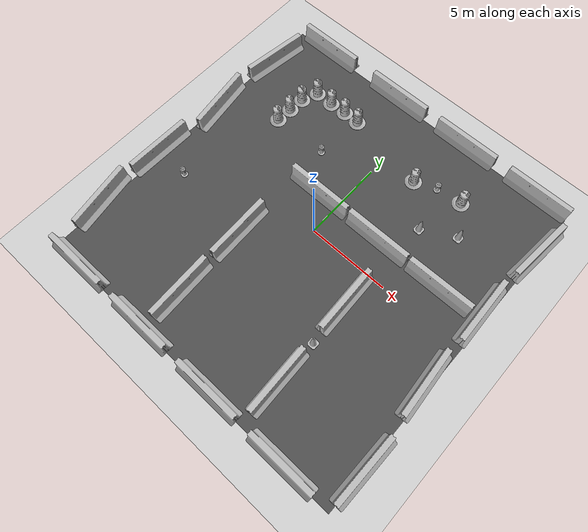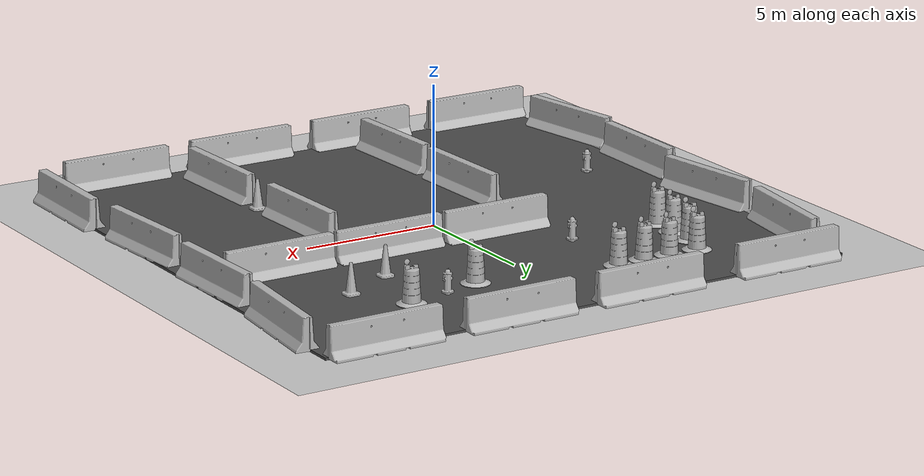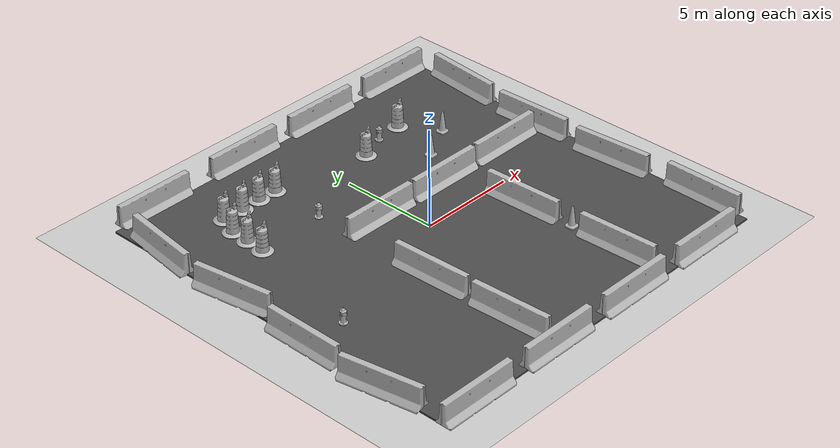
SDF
<sdf version="1.7">
 <world name="default">
  <light name="sun" type="directional">
   <pose>0 0 10 0 -0 0</pose>
   <diffuse>0.8 0.8 0.8 1</diffuse>
   <specular>0.2 0.2 0.2 1</specular>
   <attenuation>
    <range>1000</range>
    <constant>0.9</constant>
    <linear>0.01</linear>
    <quadratic>0.001</quadratic>
   </attenuation>
   <direction>-0.5 0.1 -0.9</direction>
   <spot><inner_angle>0</inner_angle><outer_angle>0</outer_angle><falloff>0</falloff></spot>
  </light>
  <model name="ground_plane">
   <static>1</static>
   <link name="link">
    <collision name="collision">
     <geometry><plane><normal>0 0 1</normal><size>100 100</size></plane></geometry>
     <surface><friction><ode><mu>100</mu><mu2>50</mu2></ode></friction></surface>
    </collision>
    <visual name="visual">
     <cast_shadows>0</cast_shadows>
     <geometry><plane><normal>0 0 1</normal><size>100 100</size></plane></geometry>
     <material>
      <script><uri>file://media/materials/scripts/gazebo.material</uri><name>Gazebo/Grey</name></script>
     </material>
    </visual>
    <velocity_decay><linear>0</linear><angular>0</angular></velocity_decay>
   </link>
  </model>
  <physics type="ode">
   <max_step_size>0.001</max_step_size>
   <real_time_factor>1</real_time_factor>
   <real_time_update_rate>1000</real_time_update_rate>
  </physics>
  <scene><ambient>0.4 0.4 0.4 1</ambient><background>0.7 0.7 0.7 1</background><shadows>1</shadows></scene>
  <model name="jersey_barrier">
   <static>1</static>
   <link name="link">
    <visual name="visual">
     <geometry><mesh><uri>model://jersey_barrier/meshes/jersey_barrier.dae</uri></mesh></geometry>
    </visual>
    <collision name="upright">
     <pose>0 0 0.5715 0 -0 0</pose>
     <geometry><box><size>4.06542 0.3063 1.143</size></box></geometry>
    </collision>
    <collision name="base">
     <pose>0 0 0.032258 0 -0 0</pose>
     <geometry><box><size>4.06542 0.8107 0.064516</size></box></geometry>
    </collision>
    <collision name="base2">
     <pose>0 0 0.1 0 -0 0</pose>
     <geometry><box><size>4.06542 0.65 0.1</size></box></geometry>
    </collision>
    <collision name="base3">
     <pose>0 0 0.2 0 -0 0</pose>
     <geometry><box><size>4.06542 0.5 0.1</size></box></geometry>
    </collision>
    <collision name="left-angle">
     <pose>0 -0.224 0.2401 0.9 -0 0</pose>
     <geometry><box><size>4.06542 0.5 0.064516</size></box></geometry>
    </collision>
    <collision name="right-angle">
     <pose>0 0.224 0.2401 -0.9 0 0</pose>
     <geometry><box><size>4.06542 0.5 0.064516</size></box></geometry>
    </collision>
    <velocity_decay><linear>0</linear><angular>0</angular></velocity_decay>
   </link>
   <pose>-8 -10 0 0 -0 0</pose>
  </model>
  <model name="jersey_barrier_0">
   <static>1</static>
   <link name="link">
    <visual name="visual">
     <geometry><mesh><uri>model://jersey_barrier/meshes/jersey_barrier.dae</uri></mesh></geometry>
    </visual>
    <collision name="upright">
     <pose>0 0 0.5715 0 -0 0</pose>
     <geometry><box><size>4.06542 0.3063 1.143</size></box></geometry>
    </collision>
    <collision name="base">
     <pose>0 0 0.032258 0 -0 0</pose>
     <geometry><box><size>4.06542 0.8107 0.064516</size></box></geometry>
    </collision>
    <collision name="base2">
     <pose>0 0 0.1 0 -0 0</pose>
     <geometry><box><size>4.06542 0.65 0.1</size></box></geometry>
    </collision>
    <collision name="base3">
     <pose>0 0 0.2 0 -0 0</pose>
     <geometry><box><size>4.06542 0.5 0.1</size></box></geometry>
    </collision>
    <collision name="left-angle">
     <pose>0 -0.224 0.2401 0.9 -0 0</pose>
     <geometry><box><size>4.06542 0.5 0.064516</size></box></geometry>
    </collision>
    <collision name="right-angle">
     <pose>0 0.224 0.2401 -0.9 0 0</pose>
     <geometry><box><size>4.06542 0.5 0.064516</size></box></geometry>
    </collision>
    <velocity_decay><linear>0</linear><angular>0</angular></velocity_decay>
   </link>
   <pose>-3 -10 0 0 -0 0</pose>
  </model>
  <model name="jersey_barrier_1">
   <static>1</static>
   <link name="link">
    <visual name="visual">
     <geometry><mesh><uri>model://jersey_barrier/meshes/jersey_barrier.dae</uri></mesh></geometry>
    </visual>
    <collision name="upright">
     <pose>0 0 0.5715 0 -0 0</pose>
     <geometry><box><size>4.06542 0.3063 1.143</size></box></geometry>
    </collision>
    <collision name="base">
     <pose>0 0 0.032258 0 -0 0</pose>
     <geometry><box><size>4.06542 0.8107 0.064516</size></box></geometry>
    </collision>
    <collision name="base2">
     <pose>0 0 0.1 0 -0 0</pose>
     <geometry><box><size>4.06542 0.65 0.1</size></box></geometry>
    </collision>
    <collision name="base3">
     <pose>0 0 0.2 0 -0 0</pose>
     <geometry><box><size>4.06542 0.5 0.1</size></box></geometry>
    </collision>
    <collision name="left-angle">
     <pose>0 -0.224 0.2401 0.9 -0 0</pose>
     <geometry><box><size>4.06542 0.5 0.064516</size></box></geometry>
    </collision>
    <collision name="right-angle">
     <pose>0 0.224 0.2401 -0.9 0 0</pose>
     <geometry><box><size>4.06542 0.5 0.064516</size></box></geometry>
    </collision>
    <velocity_decay><linear>0</linear><angular>0</angular></velocity_decay>
   </link>
   <pose>2 -10 0 0 -0 0</pose>
  </model>
  <model name="jersey_barrier_2">
   <static>1</static>
   <link name="link">
    <visual name="visual">
     <geometry><mesh><uri>model://jersey_barrier/meshes/jersey_barrier.dae</uri></mesh></geometry>
    </visual>
    <collision name="upright">
     <pose>0 0 0.5715 0 -0 0</pose>
     <geometry><box><size>4.06542 0.3063 1.143</size></box></geometry>
    </collision>
    <collision name="base">
     <pose>0 0 0.032258 0 -0 0</pose>
     <geometry><box><size>4.06542 0.8107 0.064516</size></box></geometry>
    </collision>
    <collision name="base2">
     <pose>0 0 0.1 0 -0 0</pose>
     <geometry><box><size>4.06542 0.65 0.1</size></box></geometry>
    </collision>
    <collision name="base3">
     <pose>0 0 0.2 0 -0 0</pose>
     <geometry><box><size>4.06542 0.5 0.1</size></box></geometry>
    </collision>
    <collision name="left-angle">
     <pose>0 -0.224 0.2401 0.9 -0 0</pose>
     <geometry><box><size>4.06542 0.5 0.064516</size></box></geometry>
    </collision>
    <collision name="right-angle">
     <pose>0 0.224 0.2401 -0.9 0 0</pose>
     <geometry><box><size>4.06542 0.5 0.064516</size></box></geometry>
    </collision>
    <velocity_decay><linear>0</linear><angular>0</angular></velocity_decay>
   </link>
   <pose>7 -10 0 0 -0 0</pose>
  </model>
  <model name="jersey_barrier_3">
   <static>1</static>
   <link name="link">
    <visual name="visual">
     <geometry><mesh><uri>model://jersey_barrier/meshes/jersey_barrier.dae</uri></mesh></geometry>
    </visual>
    <collision name="upright">
     <pose>0 0 0.5715 0 -0 0</pose>
     <geometry><box><size>4.06542 0.3063 1.143</size></box></geometry>
    </collision>
    <collision name="base">
     <pose>0 0 0.032258 0 -0 0</pose>
     <geometry><box><size>4.06542 0.8107 0.064516</size></box></geometry>
    </collision>
    <collision name="base2">
     <pose>0 0 0.1 0 -0 0</pose>
     <geometry><box><size>4.06542 0.65 0.1</size></box></geometry>
    </collision>
    <collision name="base3">
     <pose>0 0 0.2 0 -0 0</pose>
     <geometry><box><size>4.06542 0.5 0.1</size></box></geometry>
    </collision>
    <collision name="left-angle">
     <pose>0 -0.224 0.2401 0.9 -0 0</pose>
     <geometry><box><size>4.06542 0.5 0.064516</size></box></geometry>
    </collision>
    <collision name="right-angle">
     <pose>0 0.224 0.2401 -0.9 0 0</pose>
     <geometry><box><size>4.06542 0.5 0.064516</size></box></geometry>
    </collision>
    <velocity_decay><linear>0</linear><angular>0</angular></velocity_decay>
   </link>
   <pose>-7.50675 10 0 0 -0 0</pose>
  </model>
  <model name="jersey_barrier_4">
   <static>1</static>
   <link name="link">
    <visual name="visual">
     <geometry><mesh><uri>model://jersey_barrier/meshes/jersey_barrier.dae</uri></mesh></geometry>
    </visual>
    <collision name="upright">
     <pose>0 0 0.5715 0 -0 0</pose>
     <geometry><box><size>4.06542 0.3063 1.143</size></box></geometry>
    </collision>
    <collision name="base">
     <pose>0 0 0.032258 0 -0 0</pose>
     <geometry><box><size>4.06542 0.8107 0.064516</size></box></geometry>
    </collision>
    <collision name="base2">
     <pose>0 0 0.1 0 -0 0</pose>
     <geometry><box><size>4.06542 0.65 0.1</size></box></geometry>
    </collision>
    <collision name="base3">
     <pose>0 0 0.2 0 -0 0</pose>
     <geometry><box><size>4.06542 0.5 0.1</size></box></geometry>
    </collision>
    <collision name="left-angle">
     <pose>0 -0.224 0.2401 0.9 -0 0</pose>
     <geometry><box><size>4.06542 0.5 0.064516</size></box></geometry>
    </collision>
    <collision name="right-angle">
     <pose>0 0.224 0.2401 -0.9 0 0</pose>
     <geometry><box><size>4.06542 0.5 0.064516</size></box></geometry>
    </collision>
    <velocity_decay><linear>0</linear><angular>0</angular></velocity_decay>
   </link>
   <pose>-2 10 0 0 -0 0</pose>
  </model>
  <model name="jersey_barrier_5">
   <static>1</static>
   <link name="link">
    <visual name="visual">
     <geometry><mesh><uri>model://jersey_barrier/meshes/jersey_barrier.dae</uri></mesh></geometry>
    </visual>
    <collision name="upright">
     <pose>0 0 0.5715 0 -0 0</pose>
     <geometry><box><size>4.06542 0.3063 1.143</size></box></geometry>
    </collision>
    <collision name="base">
     <pose>0 0 0.032258 0 -0 0</pose>
     <geometry><box><size>4.06542 0.8107 0.064516</size></box></geometry>
    </collision>
    <collision name="base2">
     <pose>0 0 0.1 0 -0 0</pose>
     <geometry><box><size>4.06542 0.65 0.1</size></box></geometry>
    </collision>
    <collision name="base3">
     <pose>0 0 0.2 0 -0 0</pose>
     <geometry><box><size>4.06542 0.5 0.1</size></box></geometry>
    </collision>
    <collision name="left-angle">
     <pose>0 -0.224 0.2401 0.9 -0 0</pose>
     <geometry><box><size>4.06542 0.5 0.064516</size></box></geometry>
    </collision>
    <collision name="right-angle">
     <pose>0 0.224 0.2401 -0.9 0 0</pose>
     <geometry><box><size>4.06542 0.5 0.064516</size></box></geometry>
    </collision>
    <velocity_decay><linear>0</linear><angular>0</angular></velocity_decay>
   </link>
   <pose>3 10 0 0 -0 0</pose>
  </model>
  <model name="jersey_barrier_6">
   <static>1</static>
   <link name="link">
    <visual name="visual">
     <geometry><mesh><uri>model://jersey_barrier/meshes/jersey_barrier.dae</uri></mesh></geometry>
    </visual>
    <collision name="upright">
     <pose>0 0 0.5715 0 -0 0</pose>
     <geometry><box><size>4.06542 0.3063 1.143</size></box></geometry>
    </collision>
    <collision name="base">
     <pose>0 0 0.032258 0 -0 0</pose>
     <geometry><box><size>4.06542 0.8107 0.064516</size></box></geometry>
    </collision>
    <collision name="base2">
     <pose>0 0 0.1 0 -0 0</pose>
     <geometry><box><size>4.06542 0.65 0.1</size></box></geometry>
    </collision>
    <collision name="base3">
     <pose>0 0 0.2 0 -0 0</pose>
     <geometry><box><size>4.06542 0.5 0.1</size></box></geometry>
    </collision>
    <collision name="left-angle">
     <pose>0 -0.224 0.2401 0.9 -0 0</pose>
     <geometry><box><size>4.06542 0.5 0.064516</size></box></geometry>
    </collision>
    <collision name="right-angle">
     <pose>0 0.224 0.2401 -0.9 0 0</pose>
     <geometry><box><size>4.06542 0.5 0.064516</size></box></geometry>
    </collision>
    <velocity_decay><linear>0</linear><angular>0</angular></velocity_decay>
   </link>
   <pose>8 10 0 0 -0 0</pose>
  </model>
  <model name="jersey_barrier_7">
   <static>1</static>
   <link name="link">
    <visual name="visual">
     <geometry><mesh><uri>model://jersey_barrier/meshes/jersey_barrier.dae</uri></mesh></geometry>
    </visual>
    <collision name="upright">
     <pose>0 0 0.5715 0 -0 0</pose>
     <geometry><box><size>4.06542 0.3063 1.143</size></box></geometry>
    </collision>
    <collision name="base">
     <pose>0 0 0.032258 0 -0 0</pose>
     <geometry><box><size>4.06542 0.8107 0.064516</size></box></geometry>
    </collision>
    <collision name="base2">
     <pose>0 0 0.1 0 -0 0</pose>
     <geometry><box><size>4.06542 0.65 0.1</size></box></geometry>
    </collision>
    <collision name="base3">
     <pose>0 0 0.2 0 -0 0</pose>
     <geometry><box><size>4.06542 0.5 0.1</size></box></geometry>
    </collision>
    <collision name="left-angle">
     <pose>0 -0.224 0.2401 0.9 -0 0</pose>
     <geometry><box><size>4.06542 0.5 0.064516</size></box></geometry>
    </collision>
    <collision name="right-angle">
     <pose>0 0.224 0.2401 -0.9 0 0</pose>
     <geometry><box><size>4.06542 0.5 0.064516</size></box></geometry>
    </collision>
    <velocity_decay><linear>0</linear><angular>0</angular></velocity_decay>
   </link>
   <pose>9.74902 -2.57759 0 0 -0 1.64</pose>
  </model>
  <model name="jersey_barrier_8">
   <static>1</static>
   <link name="link">
    <visual name="visual">
     <geometry><mesh><uri>model://jersey_barrier/meshes/jersey_barrier.dae</uri></mesh></geometry>
    </visual>
    <collision name="upright">
     <pose>0 0 0.5715 0 -0 0</pose>
     <geometry><box><size>4.06542 0.3063 1.143</size></box></geometry>
    </collision>
    <collision name="base">
     <pose>0 0 0.032258 0 -0 0</pose>
     <geometry><box><size>4.06542 0.8107 0.064516</size></box></geometry>
    </collision>
    <collision name="base2">
     <pose>0 0 0.1 0 -0 0</pose>
     <geometry><box><size>4.06542 0.65 0.1</size></box></geometry>
    </collision>
    <collision name="base3">
     <pose>0 0 0.2 0 -0 0</pose>
     <geometry><box><size>4.06542 0.5 0.1</size></box></geometry>
    </collision>
    <collision name="left-angle">
     <pose>0 -0.224 0.2401 0.9 -0 0</pose>
     <geometry><box><size>4.06542 0.5 0.064516</size></box></geometry>
    </collision>
    <collision name="right-angle">
     <pose>0 0.224 0.2401 -0.9 0 0</pose>
     <geometry><box><size>4.06542 0.5 0.064516</size></box></geometry>
    </collision>
    <velocity_decay><linear>0</linear><angular>0</angular></velocity_decay>
   </link>
   <pose>9.70141 2.24369 0 0 -0 1.6</pose>
  </model>
  <model name="jersey_barrier_9">
   <static>1</static>
   <link name="link">
    <visual name="visual">
     <geometry><mesh><uri>model://jersey_barrier/meshes/jersey_barrier.dae</uri></mesh></geometry>
    </visual>
    <collision name="upright">
     <pose>0 0 0.5715 0 -0 0</pose>
     <geometry><box><size>4.06542 0.3063 1.143</size></box></geometry>
    </collision>
    <collision name="base">
     <pose>0 0 0.032258 0 -0 0</pose>
     <geometry><box><size>4.06542 0.8107 0.064516</size></box></geometry>
    </collision>
    <collision name="base2">
     <pose>0 0 0.1 0 -0 0</pose>
     <geometry><box><size>4.06542 0.65 0.1</size></box></geometry>
    </collision>
    <collision name="base3">
     <pose>0 0 0.2 0 -0 0</pose>
     <geometry><box><size>4.06542 0.5 0.1</size></box></geometry>
    </collision>
    <collision name="left-angle">
     <pose>0 -0.224 0.2401 0.9 -0 0</pose>
     <geometry><box><size>4.06542 0.5 0.064516</size></box></geometry>
    </collision>
    <collision name="right-angle">
     <pose>0 0.224 0.2401 -0.9 0 0</pose>
     <geometry><box><size>4.06542 0.5 0.064516</size></box></geometry>
    </collision>
    <velocity_decay><linear>0</linear><angular>0</angular></velocity_decay>
   </link>
   <pose>-10.0607 -6.69856 0 0 0 -1.4</pose>
  </model>
  <model name="jersey_barrier_10">
   <static>1</static>
   <link name="link">
    <visual name="visual">
     <geometry><mesh><uri>model://jersey_barrier/meshes/jersey_barrier.dae</uri></mesh></geometry>
    </visual>
    <collision name="upright">
     <pose>0 0 0.5715 0 -0 0</pose>
     <geometry><box><size>4.06542 0.3063 1.143</size></box></geometry>
    </collision>
    <collision name="base">
     <pose>0 0 0.032258 0 -0 0</pose>
     <geometry><box><size>4.06542 0.8107 0.064516</size></box></geometry>
    </collision>
    <collision name="base2">
     <pose>0 0 0.1 0 -0 0</pose>
     <geometry><box><size>4.06542 0.65 0.1</size></box></geometry>
    </collision>
    <collision name="base3">
     <pose>0 0 0.2 0 -0 0</pose>
     <geometry><box><size>4.06542 0.5 0.1</size></box></geometry>
    </collision>
    <collision name="left-angle">
     <pose>0 -0.224 0.2401 0.9 -0 0</pose>
     <geometry><box><size>4.06542 0.5 0.064516</size></box></geometry>
    </collision>
    <collision name="right-angle">
     <pose>0 0.224 0.2401 -0.9 0 0</pose>
     <geometry><box><size>4.06542 0.5 0.064516</size></box></geometry>
    </collision>
    <velocity_decay><linear>0</linear><angular>0</angular></velocity_decay>
   </link>
   <pose>-10.0774 -2.27159 0 0 -0 1.56</pose>
  </model>
  <model name="jersey_barrier_11">
   <static>1</static>
   <link name="link">
    <visual name="visual">
     <geometry><mesh><uri>model://jersey_barrier/meshes/jersey_barrier.dae</uri></mesh></geometry>
    </visual>
    <collision name="upright">
     <pose>0 0 0.5715 0 -0 0</pose>
     <geometry><box><size>4.06542 0.3063 1.143</size></box></geometry>
    </collision>
    <collision name="base">
     <pose>0 0 0.032258 0 -0 0</pose>
     <geometry><box><size>4.06542 0.8107 0.064516</size></box></geometry>
    </collision>
    <collision name="base2">
     <pose>0 0 0.1 0 -0 0</pose>
     <geometry><box><size>4.06542 0.65 0.1</size></box></geometry>
    </collision>
    <collision name="base3">
     <pose>0 0 0.2 0 -0 0</pose>
     <geometry><box><size>4.06542 0.5 0.1</size></box></geometry>
    </collision>
    <collision name="left-angle">
     <pose>0 -0.224 0.2401 0.9 -0 0</pose>
     <geometry><box><size>4.06542 0.5 0.064516</size></box></geometry>
    </collision>
    <collision name="right-angle">
     <pose>0 0.224 0.2401 -0.9 0 0</pose>
     <geometry><box><size>4.06542 0.5 0.064516</size></box></geometry>
    </collision>
    <velocity_decay><linear>0</linear><angular>0</angular></velocity_decay>
   </link>
   <pose>-9.77013 2.34791 0 0 -0 1.72</pose>
  </model>
  <model name="jersey_barrier_12">
   <static>1</static>
   <link name="link">
    <visual name="visual">
     <geometry><mesh><uri>model://jersey_barrier/meshes/jersey_barrier.dae</uri></mesh></geometry>
    </visual>
    <collision name="upright">
     <pose>0 0 0.5715 0 -0 0</pose>
     <geometry><box><size>4.06542 0.3063 1.143</size></box></geometry>
    </collision>
    <collision name="base">
     <pose>0 0 0.032258 0 -0 0</pose>
     <geometry><box><size>4.06542 0.8107 0.064516</size></box></geometry>
    </collision>
    <collision name="base2">
     <pose>0 0 0.1 0 -0 0</pose>
     <geometry><box><size>4.06542 0.65 0.1</size></box></geometry>
    </collision>
    <collision name="base3">
     <pose>0 0 0.2 0 -0 0</pose>
     <geometry><box><size>4.06542 0.5 0.1</size></box></geometry>
    </collision>
    <collision name="left-angle">
     <pose>0 -0.224 0.2401 0.9 -0 0</pose>
     <geometry><box><size>4.06542 0.5 0.064516</size></box></geometry>
    </collision>
    <collision name="right-angle">
     <pose>0 0.224 0.2401 -0.9 0 0</pose>
     <geometry><box><size>4.06542 0.5 0.064516</size></box></geometry>
    </collision>
    <velocity_decay><linear>0</linear><angular>0</angular></velocity_decay>
   </link>
   <pose>10.0879 -7.62159 0 0 -0 1.56</pose>
  </model>
  <model name="jersey_barrier_13">
   <static>1</static>
   <link name="link">
    <visual name="visual">
     <geometry><mesh><uri>model://jersey_barrier/meshes/jersey_barrier.dae</uri></mesh></geometry>
    </visual>
    <collision name="upright">
     <pose>0 0 0.5715 0 -0 0</pose>
     <geometry><box><size>4.06542 0.3063 1.143</size></box></geometry>
    </collision>
    <collision name="base">
     <pose>0 0 0.032258 0 -0 0</pose>
     <geometry><box><size>4.06542 0.8107 0.064516</size></box></geometry>
    </collision>
    <collision name="base2">
     <pose>0 0 0.1 0 -0 0</pose>
     <geometry><box><size>4.06542 0.65 0.1</size></box></geometry>
    </collision>
    <collision name="base3">
     <pose>0 0 0.2 0 -0 0</pose>
     <geometry><box><size>4.06542 0.5 0.1</size></box></geometry>
    </collision>
    <collision name="left-angle">
     <pose>0 -0.224 0.2401 0.9 -0 0</pose>
     <geometry><box><size>4.06542 0.5 0.064516</size></box></geometry>
    </collision>
    <collision name="right-angle">
     <pose>0 0.224 0.2401 -0.9 0 0</pose>
     <geometry><box><size>4.06542 0.5 0.064516</size></box></geometry>
    </collision>
    <velocity_decay><linear>0</linear><angular>0</angular></velocity_decay>
   </link>
   <pose>10 7 0 0 -0 1.48</pose>
  </model>
  <model name="jersey_barrier_14">
   <static>1</static>
   <link name="link">
    <visual name="visual">
     <geometry><mesh><uri>model://jersey_barrier/meshes/jersey_barrier.dae</uri></mesh></geometry>
    </visual>
    <collision name="upright">
     <pose>0 0 0.5715 0 -0 0</pose>
     <geometry><box><size>4.06542 0.3063 1.143</size></box></geometry>
    </collision>
    <collision name="base">
     <pose>0 0 0.032258 0 -0 0</pose>
     <geometry><box><size>4.06542 0.8107 0.064516</size></box></geometry>
    </collision>
    <collision name="base2">
     <pose>0 0 0.1 0 -0 0</pose>
     <geometry><box><size>4.06542 0.65 0.1</size></box></geometry>
    </collision>
    <collision name="base3">
     <pose>0 0 0.2 0 -0 0</pose>
     <geometry><box><size>4.06542 0.5 0.1</size></box></geometry>
    </collision>
    <collision name="left-angle">
     <pose>0 -0.224 0.2401 0.9 -0 0</pose>
     <geometry><box><size>4.06542 0.5 0.064516</size></box></geometry>
    </collision>
    <collision name="right-angle">
     <pose>0 0.224 0.2401 -0.9 0 0</pose>
     <geometry><box><size>4.06542 0.5 0.064516</size></box></geometry>
    </collision>
    <velocity_decay><linear>0</linear><angular>0</angular></velocity_decay>
   </link>
   <pose>-9.64482 7.05946 0 0 -0 1.44</pose>
  </model>
  <model name="fire_hydrant">
   <static>1</static>
   <link name="link">
    <collision name="collision">
     <geometry><mesh><uri>model://fire_hydrant/meshes/fire_hydrant.dae</uri></mesh></geometry>
    </collision>
    <visual name="visual">
     <geometry><mesh><uri>model://fire_hydrant/meshes/fire_hydrant.dae</uri></mesh></geometry>
    </visual>
    <velocity_decay><linear>0</linear><angular>0</angular></velocity_decay>
   </link>
   <pose>3.56194 6.57655 0 0 -0 0</pose>
  </model>
  <model name="fire_hydrant_0">
   <static>1</static>
   <link name="link">
    <collision name="collision">
     <geometry><mesh><uri>model://fire_hydrant/meshes/fire_hydrant.dae</uri></mesh></geometry>
    </collision>
    <visual name="visual">
     <geometry><mesh><uri>model://fire_hydrant/meshes/fire_hydrant.dae</uri></mesh></geometry>
    </visual>
    <velocity_decay><linear>0</linear><angular>0</angular></velocity_decay>
   </link>
   <pose>-3 4 0 0 -0 0</pose>
  </model>
  <model name="fire_hydrant_1">
   <static>1</static>
   <link name="link">
    <collision name="collision">
     <geometry><mesh><uri>model://fire_hydrant/meshes/fire_hydrant.dae</uri></mesh></geometry>
    </collision>
    <visual name="visual">
     <geometry><mesh><uri>model://fire_hydrant/meshes/fire_hydrant.dae</uri></mesh></geometry>
    </visual>
    <velocity_decay><linear>0</linear><angular>0</angular></velocity_decay>
   </link>
   <pose>-7.90686 -2.41363 0 0 -0 0</pose>
  </model>
  <model name="jersey_barrier_15">
   <static>1</static>
   <link name="link">
    <visual name="visual">
     <geometry><mesh><uri>model://jersey_barrier/meshes/jersey_barrier.dae</uri></mesh></geometry>
    </visual>
    <collision name="upright">
     <pose>0 0 0.5715 0 -0 0</pose>
     <geometry><box><size>4.06542 0.3063 1.143</size></box></geometry>
    </collision>
    <collision name="base">
     <pose>0 0 0.032258 0 -0 0</pose>
     <geometry><box><size>4.06542 0.8107 0.064516</size></box></geometry>
    </collision>
    <collision name="base2">
     <pose>0 0 0.1 0 -0 0</pose>
     <geometry><box><size>4.06542 0.65 0.1</size></box></geometry>
    </collision>
    <collision name="base3">
     <pose>0 0 0.2 0 -0 0</pose>
     <geometry><box><size>4.06542 0.5 0.1</size></box></geometry>
    </collision>
    <collision name="left-angle">
     <pose>0 -0.224 0.2401 0.9 -0 0</pose>
     <geometry><box><size>4.06542 0.5 0.064516</size></box></geometry>
    </collision>
    <collision name="right-angle">
     <pose>0 0.224 0.2401 -0.9 0 0</pose>
     <geometry><box><size>4.06542 0.5 0.064516</size></box></geometry>
    </collision>
    <velocity_decay><linear>0</linear><angular>0</angular></velocity_decay>
   </link>
   <pose>7.19227 1.93681 0 0 0 -3.1317</pose>
  </model>
  <model name="Construction Cone">
   <link name="link">
    <collision name="collision">
     <geometry>
      <mesh><scale>10 10 10</scale><uri>model://construction_cone/meshes/construction_cone.dae</uri></mesh>
     </geometry>
    </collision>
    <visual name="visual">
     <geometry>
      <mesh><scale>10 10 10</scale><uri>model://construction_cone/meshes/construction_cone.dae</uri></mesh>
     </geometry>
    </visual>
    <velocity_decay><linear>0</linear><angular>0</angular></velocity_decay>
    <inertial>
     <inertia><ixx>1</ixx><ixy>0</ixy><ixz>0</ixz><iyy>1</iyy><iyz>0</iyz><izz>1</izz></inertia>
     <mass>1</mass>
    </inertial>
   </link>
   <pose>6.25135 4.98276 0.05 1e-06 -0 0</pose>
   <static>0</static>
  </model>
  <model name="Construction Barrel">
   <link name="link">
    <inertial>
     <pose>0 0 0.4 0 -0 0</pose>
     <mass>500</mass>
     <inertia><ixx>51.2096</ixx><iyy>51.2096</iyy><izz>25</izz><ixy>0</ixy><ixz>0</ixz><iyz>0</iyz></inertia>
    </inertial>
    <collision name="collision">
     <geometry><mesh><uri>model://construction_barrel/meshes/construction_barrel.dae</uri></mesh></geometry>
    </collision>
    <visual name="visual">
     <geometry><mesh><uri>model://construction_barrel/meshes/construction_barrel.dae</uri></mesh></geometry>
    </visual>
    <velocity_decay><linear>0</linear><angular>0</angular></velocity_decay>
   </link>
   <pose>5.08289 6.82067 0.05 0 -1e-06 0.000577</pose>
   <static>0</static>
  </model>
  <model name="Construction Cone_0">
   <link name="link">
    <collision name="collision">
     <geometry>
      <mesh><scale>10 10 10</scale><uri>model://construction_cone/meshes/construction_cone.dae</uri></mesh>
     </geometry>
    </collision>
    <visual name="visual">
     <geometry>
      <mesh><scale>10 10 10</scale><uri>model://construction_cone/meshes/construction_cone.dae</uri></mesh>
     </geometry>
    </visual>
    <velocity_decay><linear>0</linear><angular>0</angular></velocity_decay>
    <inertial>
     <inertia><ixx>1</ixx><ixy>0</ixy><ixz>0</ixz><iyy>1</iyy><iyz>0</iyz><izz>1</izz></inertia>
     <mass>1</mass>
    </inertial>
   </link>
   <pose>4.32471 3.94071 0.050001 1e-06 -1e-06 -0.007012</pose>
   <static>0</static>
  </model>
  <model name="Construction Barrel_0">
   <link name="link">
    <inertial>
     <pose>0 0 0.4 0 -0 0</pose>
     <mass>500</mass>
     <inertia><ixx>51.2096</ixx><iyy>51.2096</iyy><izz>25</izz><ixy>0</ixy><ixz>0</ixz><iyz>0</iyz></inertia>
    </inertial>
    <collision name="collision">
     <geometry><mesh><uri>model://construction_barrel/meshes/construction_barrel.dae</uri></mesh></geometry>
    </collision>
    <visual name="visual">
     <geometry><mesh><uri>model://construction_barrel/meshes/construction_barrel.dae</uri></mesh></geometry>
    </visual>
    <velocity_decay><linear>0</linear><angular>0</angular></velocity_decay>
   </link>
   <pose>2.21382 6.13015 0.049999 -1e-06 -2e-06 0.00021</pose>
   <static>0</static>
  </model>
  <model name="asphalt_plane">
   <static>1</static>
   <link name="link">
    <collision name="collision"><geometry><box><size>20 20 0.1</size></box></geometry></collision>
    <visual name="visual">
     <cast_shadows>0</cast_shadows>
     <geometry><box><size>20 20 0.1</size></box></geometry>
     <material>
      <script>
       <uri>model://asphalt_plane/materials/scripts</uri>
       <uri>model://asphalt_plane/materials/textures</uri>
       <name>vrc/asphalt</name>
      </script>
     </material>
    </visual>
    <velocity_decay><linear>0</linear><angular>0</angular></velocity_decay>
   </link>
   <pose>0.076733 -0.110379 0 0 -0 0</pose>
  </model>
  <model name="Construction Barrel_1">
   <link name="link">
    <inertial>
     <pose>0 0 0.4 0 -0 0</pose>
     <mass>500</mass>
     <inertia><ixx>51.2096</ixx><iyy>51.2096</iyy><izz>25</izz><ixy>0</ixy><ixz>0</ixz><iyz>0</iyz></inertia>
    </inertial>
    <collision name="collision">
     <geometry><mesh><uri>model://construction_barrel/meshes/construction_barrel.dae</uri></mesh></geometry>
    </collision>
    <visual name="visual">
     <geometry><mesh><uri>model://construction_barrel/meshes/construction_barrel.dae</uri></mesh></geometry>
    </visual>
    <velocity_decay><linear>0</linear><angular>0</angular></velocity_decay>
   </link>
   <pose>-6.5047 3.98268 0.049999 -1e-06 -2e-06 -0.009431</pose>
   <static>0</static>
  </model>
  <model name="Construction Barrel_2">
   <link name="link">
    <inertial>
     <pose>0 0 0.4 0 -0 0</pose>
     <mass>500</mass>
     <inertia><ixx>51.2096</ixx><iyy>51.2096</iyy><izz>25</izz><ixy>0</ixy><ixz>0</ixz><iyz>0</iyz></inertia>
    </inertial>
    <collision name="collision">
     <geometry><mesh><uri>model://construction_barrel/meshes/construction_barrel.dae</uri></mesh></geometry>
    </collision>
    <visual name="visual">
     <geometry><mesh><uri>model://construction_barrel/meshes/construction_barrel.dae</uri></mesh></geometry>
    </visual>
    <velocity_decay><linear>0</linear><angular>0</angular></velocity_decay>
   </link>
   <pose>-6.45053 4.99648 0.049999 -1e-06 -2e-06 0.065128</pose>
   <static>0</static>
  </model>
  <model name="Construction Barrel_3">
   <link name="link">
    <inertial>
     <pose>0 0 0.4 0 -0 0</pose>
     <mass>500</mass>
     <inertia><ixx>51.2096</ixx><iyy>51.2096</iyy><izz>25</izz><ixy>0</ixy><ixz>0</ixz><iyz>0</iyz></inertia>
    </inertial>
    <collision name="collision">
     <geometry><mesh><uri>model://construction_barrel/meshes/construction_barrel.dae</uri></mesh></geometry>
    </collision>
    <visual name="visual">
     <geometry><mesh><uri>model://construction_barrel/meshes/construction_barrel.dae</uri></mesh></geometry>
    </visual>
    <velocity_decay><linear>0</linear><angular>0</angular></velocity_decay>
   </link>
   <pose>-6.40164 6.01121 0.049999 -1e-06 -4e-06 -0.120626</pose>
   <static>0</static>
  </model>
  <model name="Construction Barrel_4">
   <link name="link">
    <inertial>
     <pose>0 0 0.4 0 -0 0</pose>
     <mass>500</mass>
     <inertia><ixx>51.2096</ixx><iyy>51.2096</iyy><izz>25</izz><ixy>0</ixy><ixz>0</ixz><iyz>0</iyz></inertia>
    </inertial>
    <collision name="collision">
     <geometry><mesh><uri>model://construction_barrel/meshes/construction_barrel.dae</uri></mesh></geometry>
    </collision>
    <visual name="visual">
     <geometry><mesh><uri>model://construction_barrel/meshes/construction_barrel.dae</uri></mesh></geometry>
    </visual>
    <velocity_decay><linear>0</linear><angular>0</angular></velocity_decay>
   </link>
   <pose>-6.00622 7.00887 0.049999 -1e-06 -2e-06 -0.049385</pose>
   <static>0</static>
  </model>
  <model name="Construction Barrel_5">
   <link name="link">
    <inertial>
     <pose>0 0 0.4 0 -0 0</pose>
     <mass>500</mass>
     <inertia><ixx>51.2096</ixx><iyy>51.2096</iyy><izz>25</izz><ixy>0</ixy><ixz>0</ixz><iyz>0</iyz></inertia>
    </inertial>
    <collision name="collision">
     <geometry><mesh><uri>model://construction_barrel/meshes/construction_barrel.dae</uri></mesh></geometry>
    </collision>
    <visual name="visual">
     <geometry><mesh><uri>model://construction_barrel/meshes/construction_barrel.dae</uri></mesh></geometry>
    </visual>
    <velocity_decay><linear>0</linear><angular>0</angular></velocity_decay>
   </link>
   <pose>-4.87554 7.00822 0.049999 4e-06 0 0.146248</pose>
   <static>0</static>
  </model>
  <model name="Construction Barrel_6">
   <link name="link">
    <inertial>
     <pose>0 0 0.4 0 -0 0</pose>
     <mass>500</mass>
     <inertia><ixx>51.2096</ixx><iyy>51.2096</iyy><izz>25</izz><ixy>0</ixy><ixz>0</ixz><iyz>0</iyz></inertia>
    </inertial>
    <collision name="collision">
     <geometry><mesh><uri>model://construction_barrel/meshes/construction_barrel.dae</uri></mesh></geometry>
    </collision>
    <visual name="visual">
     <geometry><mesh><uri>model://construction_barrel/meshes/construction_barrel.dae</uri></mesh></geometry>
    </visual>
    <velocity_decay><linear>0</linear><angular>0</angular></velocity_decay>
   </link>
   <pose>-3.81089 7.04561 0.062595 -0.003255 -0.0247 0.050598</pose>
   <static>0</static>
  </model>
  <model name="Construction Barrel_7">
   <link name="link">
    <inertial>
     <pose>0 0 0.4 0 -0 0</pose>
     <mass>500</mass>
     <inertia><ixx>51.2096</ixx><iyy>51.2096</iyy><izz>25</izz><ixy>0</ixy><ixz>0</ixz><iyz>0</iyz></inertia>
    </inertial>
    <collision name="collision">
     <geometry><mesh><uri>model://construction_barrel/meshes/construction_barrel.dae</uri></mesh></geometry>
    </collision>
    <visual name="visual">
     <geometry><mesh><uri>model://construction_barrel/meshes/construction_barrel.dae</uri></mesh></geometry>
    </visual>
    <velocity_decay><linear>0</linear><angular>0</angular></velocity_decay>
   </link>
   <pose>-2.81115 7.03639 0.049987 7e-06 -1.4e-05 0.00838</pose>
   <static>0</static>
  </model>
  <model name="Construction Cone_1">
   <link name="link">
    <collision name="collision">
     <geometry>
      <mesh><scale>10 10 10</scale><uri>model://construction_cone/meshes/construction_cone.dae</uri></mesh>
     </geometry>
    </collision>
    <visual name="visual">
     <geometry>
      <mesh><scale>10 10 10</scale><uri>model://construction_cone/meshes/construction_cone.dae</uri></mesh>
     </geometry>
    </visual>
    <velocity_decay><linear>0</linear><angular>0</angular></velocity_decay>
    <inertial>
     <inertia><ixx>1</ixx><ixy>0</ixy><ixz>0</ixz><iyy>1</iyy><iyz>0</iyz><izz>1</izz></inertia>
     <mass>1</mass>
    </inertial>
   </link>
   <pose>4.25081 -4.7308 0.05 0 1e-06 0</pose>
   <static>0</static>
  </model>
  <gravity>0 0 -9.8</gravity>
  <magnetic_field>6e-06 2.3e-05 -4.2e-05</magnetic_field>
  <atmosphere type="adiabatic"/>
  <audio><device>default</device></audio>
  <spherical_coordinates>
   <surface_model>EARTH_WGS84</surface_model>
   <latitude_deg>0</latitude_deg>
   <longitude_deg>0</longitude_deg>
   <elevation>0</elevation>
   <heading_deg>0</heading_deg>
  </spherical_coordinates>
  <model name="jersey_barrier_16">
   <static>1</static>
   <link name="link">
    <visual name="visual">
     <geometry><mesh><uri>model://jersey_barrier/meshes/jersey_barrier.dae</uri></mesh></geometry>
    </visual>
    <collision name="upright">
     <pose>0 0 0.5715 0 -0 0</pose>
     <geometry><box><size>4.06542 0.3063 1.143</size></box></geometry>
    </collision>
    <collision name="base">
     <pose>0 0 0.032258 0 -0 0</pose>
     <geometry><box><size>4.06542 0.8107 0.064516</size></box></geometry>
    </collision>
    <collision name="base2">
     <pose>0 0 0.1 0 -0 0</pose>
     <geometry><box><size>4.06542 0.65 0.1</size></box></geometry>
    </collision>
    <collision name="base3">
     <pose>0 0 0.2 0 -0 0</pose>
     <geometry><box><size>4.06542 0.5 0.1</size></box></geometry>
    </collision>
    <collision name="left-angle">
     <pose>0 -0.224 0.2401 0.9 -0 0</pose>
     <geometry><box><size>4.06542 0.5 0.064516</size></box></geometry>
    </collision>
    <collision name="right-angle">
     <pose>0 0.224 0.2401 -0.9 0 0</pose>
     <geometry><box><size>4.06542 0.5 0.064516</size></box></geometry>
    </collision>
   </link>
   <pose>2.98614 1.91127 0 0 -0 0</pose>
  </model>
  <model name="jersey_barrier_17">
   <static>1</static>
   <link name="link">
    <visual name="visual">
     <geometry><mesh><uri>model://jersey_barrier/meshes/jersey_barrier.dae</uri></mesh></geometry>
    </visual>
    <collision name="upright">
     <pose>0 0 0.5715 0 -0 0</pose>
     <geometry><box><size>4.06542 0.3063 1.143</size></box></geometry>
    </collision>
    <collision name="base">
     <pose>0 0 0.032258 0 -0 0</pose>
     <geometry><box><size>4.06542 0.8107 0.064516</size></box></geometry>
    </collision>
    <collision name="base2">
     <pose>0 0 0.1 0 -0 0</pose>
     <geometry><box><size>4.06542 0.65 0.1</size></box></geometry>
    </collision>
    <collision name="base3">
     <pose>0 0 0.2 0 -0 0</pose>
     <geometry><box><size>4.06542 0.5 0.1</size></box></geometry>
    </collision>
    <collision name="left-angle">
     <pose>0 -0.224 0.2401 0.9 -0 0</pose>
     <geometry><box><size>4.06542 0.5 0.064516</size></box></geometry>
    </collision>
    <collision name="right-angle">
     <pose>0 0.224 0.2401 -0.9 0 0</pose>
     <geometry><box><size>4.06542 0.5 0.064516</size></box></geometry>
    </collision>
   </link>
   <pose>-1.23498 1.91916 0 0 -0 0</pose>
  </model>
  <model name="jersey_barrier_18">
   <static>1</static>
   <link name="link">
    <visual name="visual">
     <geometry><mesh><uri>model://jersey_barrier/meshes/jersey_barrier.dae</uri></mesh></geometry>
    </visual>
    <collision name="upright">
     <pose>0 0 0.5715 0 -0 0</pose>
     <geometry><box><size>4.06542 0.3063 1.143</size></box></geometry>
    </collision>
    <collision name="base">
     <pose>0 0 0.032258 0 -0 0</pose>
     <geometry><box><size>4.06542 0.8107 0.064516</size></box></geometry>
    </collision>
    <collision name="base2">
     <pose>0 0 0.1 0 -0 0</pose>
     <geometry><box><size>4.06542 0.65 0.1</size></box></geometry>
    </collision>
    <collision name="base3">
     <pose>0 0 0.2 0 -0 0</pose>
     <geometry><box><size>4.06542 0.5 0.1</size></box></geometry>
    </collision>
    <collision name="left-angle">
     <pose>0 -0.224 0.2401 0.9 -0 0</pose>
     <geometry><box><size>4.06542 0.5 0.064516</size></box></geometry>
    </collision>
    <collision name="right-angle">
     <pose>0 0.224 0.2401 -0.9 0 0</pose>
     <geometry><box><size>4.06542 0.5 0.064516</size></box></geometry>
    </collision>
   </link>
   <pose>4.23813 -7.34612 0 0 0 -1.53521</pose>
  </model>
  <model name="jersey_barrier_18_clone">
   <static>1</static>
   <link name="link">
    <visual name="visual">
     <geometry><mesh><uri>model://jersey_barrier/meshes/jersey_barrier.dae</uri></mesh></geometry>
    </visual>
    <collision name="upright">
     <pose>0 0 0.5715 0 -0 0</pose>
     <geometry><box><size>4.06542 0.3063 1.143</size></box></geometry>
    </collision>
    <collision name="base">
     <pose>0 0 0.032258 0 -0 0</pose>
     <geometry><box><size>4.06542 0.8107 0.064516</size></box></geometry>
    </collision>
    <collision name="base2">
     <pose>0 0 0.1 0 -0 0</pose>
     <geometry><box><size>4.06542 0.65 0.1</size></box></geometry>
    </collision>
    <collision name="base3">
     <pose>0 0 0.2 0 -0 0</pose>
     <geometry><box><size>4.06542 0.5 0.1</size></box></geometry>
    </collision>
    <collision name="left-angle">
     <pose>0 -0.224 0.2401 0.9 -0 0</pose>
     <geometry><box><size>4.06542 0.5 0.064516</size></box></geometry>
    </collision>
    <collision name="right-angle">
     <pose>0 0.224 0.2401 -0.9 0 0</pose>
     <geometry><box><size>4.06542 0.5 0.064516</size></box></geometry>
    </collision>
   </link>
   <pose>4.05617 -2.01578 0 0 0 -1.53521</pose>
  </model>
  <model name="jersey_barrier_19">
   <static>1</static>
   <link name="link">
    <visual name="visual">
     <geometry><mesh><uri>model://jersey_barrier/meshes/jersey_barrier.dae</uri></mesh></geometry>
    </visual>
    <collision name="upright">
     <pose>0 0 0.5715 0 -0 0</pose>
     <geometry><box><size>4.06542 0.3063 1.143</size></box></geometry>
    </collision>
    <collision name="base">
     <pose>0 0 0.032258 0 -0 0</pose>
     <geometry><box><size>4.06542 0.8107 0.064516</size></box></geometry>
    </collision>
    <collision name="base2">
     <pose>0 0 0.1 0 -0 0</pose>
     <geometry><box><size>4.06542 0.65 0.1</size></box></geometry>
    </collision>
    <collision name="base3">
     <pose>0 0 0.2 0 -0 0</pose>
     <geometry><box><size>4.06542 0.5 0.1</size></box></geometry>
    </collision>
    <collision name="left-angle">
     <pose>0 -0.224 0.2401 0.9 -0 0</pose>
     <geometry><box><size>4.06542 0.5 0.064516</size></box></geometry>
    </collision>
    <collision name="right-angle">
     <pose>0 0.224 0.2401 -0.9 0 0</pose>
     <geometry><box><size>4.06542 0.5 0.064516</size></box></geometry>
    </collision>
   </link>
   <pose>-2.8608 -7.29744 0 0 0 -1.52736</pose>
  </model>
  <model name="jersey_barrier_20">
   <static>1</static>
   <link name="link">
    <visual name="visual">
     <geometry><mesh><uri>model://jersey_barrier/meshes/jersey_barrier.dae</uri></mesh></geometry>
    </visual>
    <collision name="upright">
     <pose>0 0 0.5715 0 -0 0</pose>
     <geometry><box><size>4.06542 0.3063 1.143</size></box></geometry>
    </collision>
    <collision name="base">
     <pose>0 0 0.032258 0 -0 0</pose>
     <geometry><box><size>4.06542 0.8107 0.064516</size></box></geometry>
    </collision>
    <collision name="base2">
     <pose>0 0 0.1 0 -0 0</pose>
     <geometry><box><size>4.06542 0.65 0.1</size></box></geometry>
    </collision>
    <collision name="base3">
     <pose>0 0 0.2 0 -0 0</pose>
     <geometry><box><size>4.06542 0.5 0.1</size></box></geometry>
    </collision>
    <collision name="left-angle">
     <pose>0 -0.224 0.2401 0.9 -0 0</pose>
     <geometry><box><size>4.06542 0.5 0.064516</size></box></geometry>
    </collision>
    <collision name="right-angle">
     <pose>0 0.224 0.2401 -0.9 0 0</pose>
     <geometry><box><size>4.06542 0.5 0.064516</size></box></geometry>
    </collision>
   </link>
   <pose>-2.9575 -2.8748 0 0 0 -1.537</pose>
  </model>
 </world>
</sdf>
